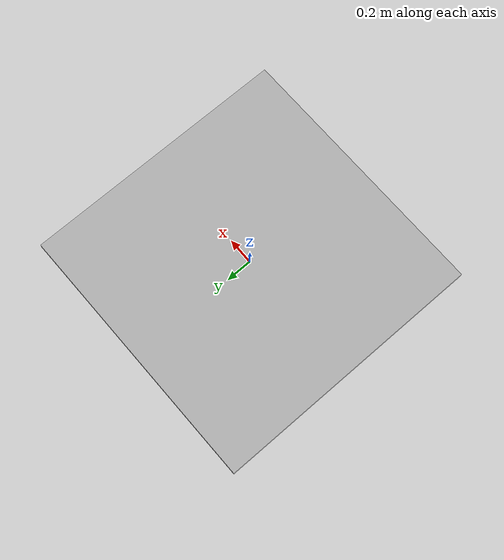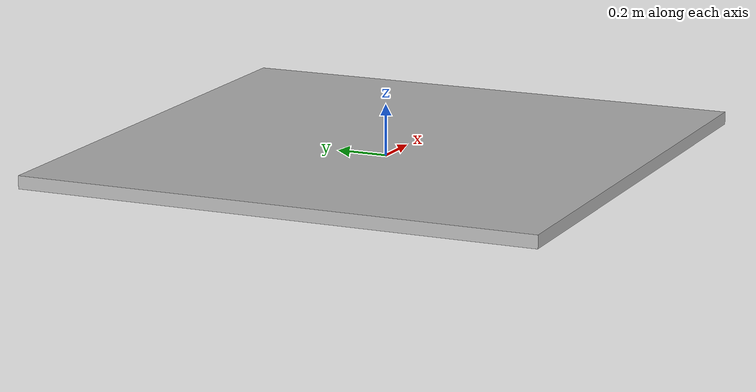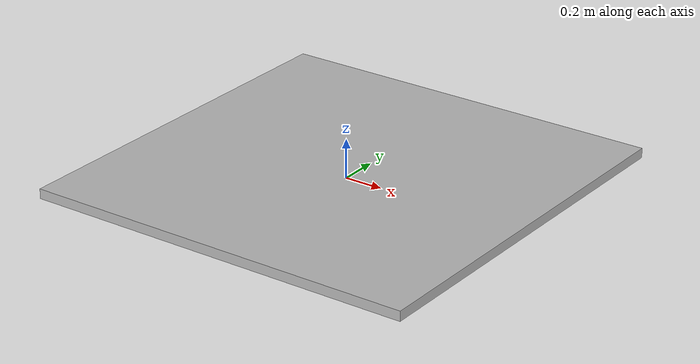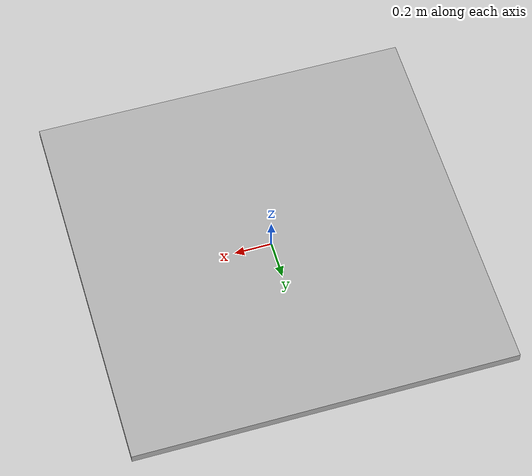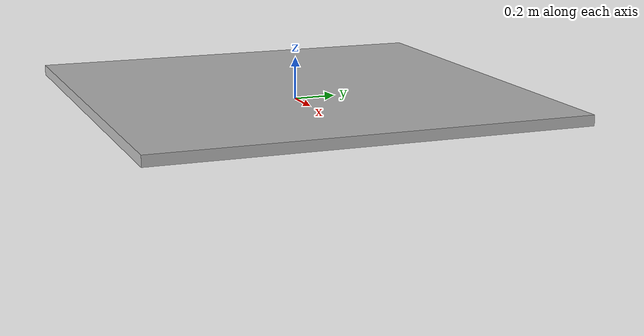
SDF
<?xml version="1.0" encoding="UTF-8"?>
<sdf version='1.9'>
  <model name='helipad'>
    <static>true</static>
    <pose>0 0 0.001 0 0 0</pose>

    <link name="base">
      <visual name="base_visual">
        <pose>0 0 0 1.57079632679 0 0</pose>
        <geometry>
          <mesh>
            <uri>./helipad.obj</uri>
          </mesh>
        </geometry>
      </visual>
    </link>
  </model>
</sdf>
